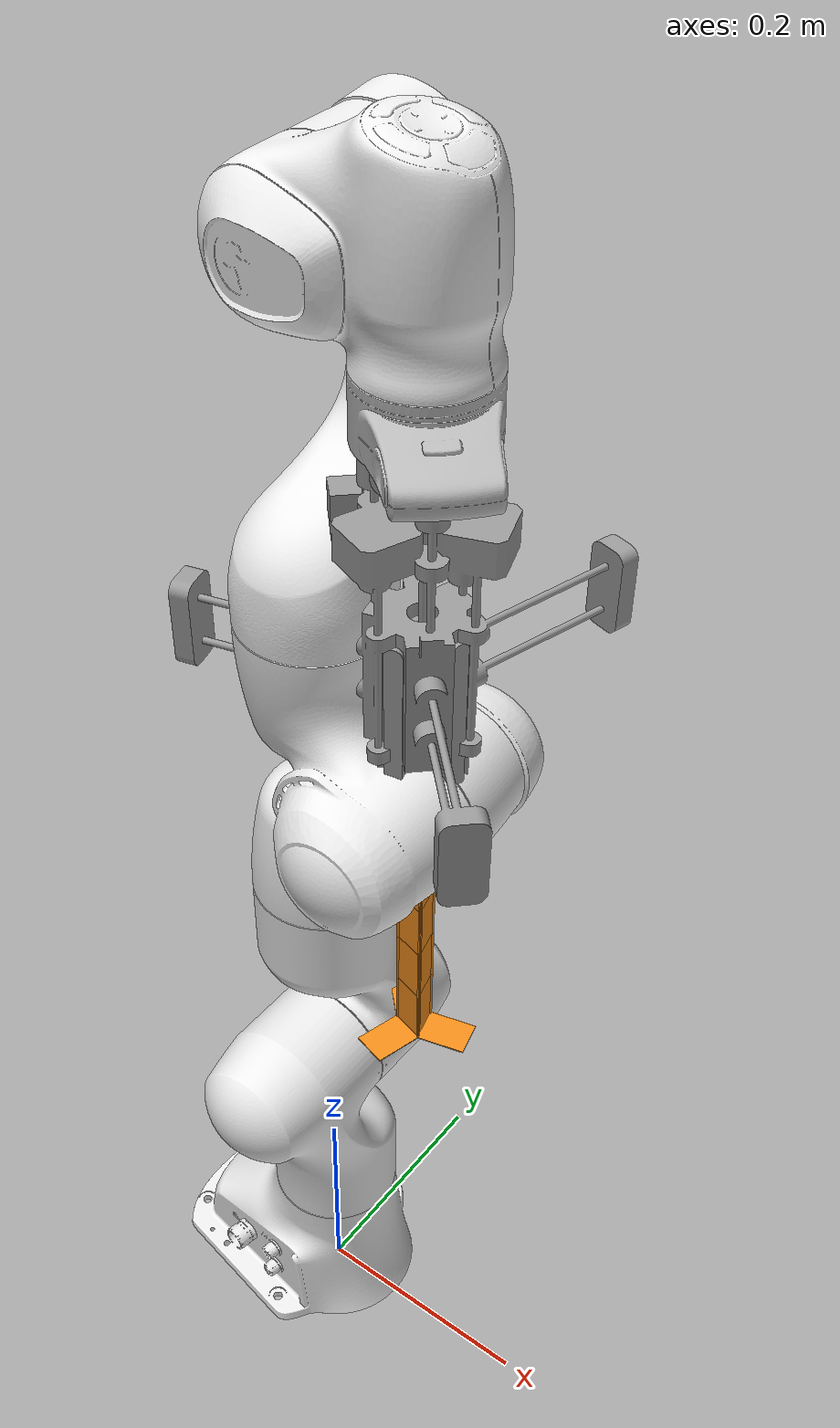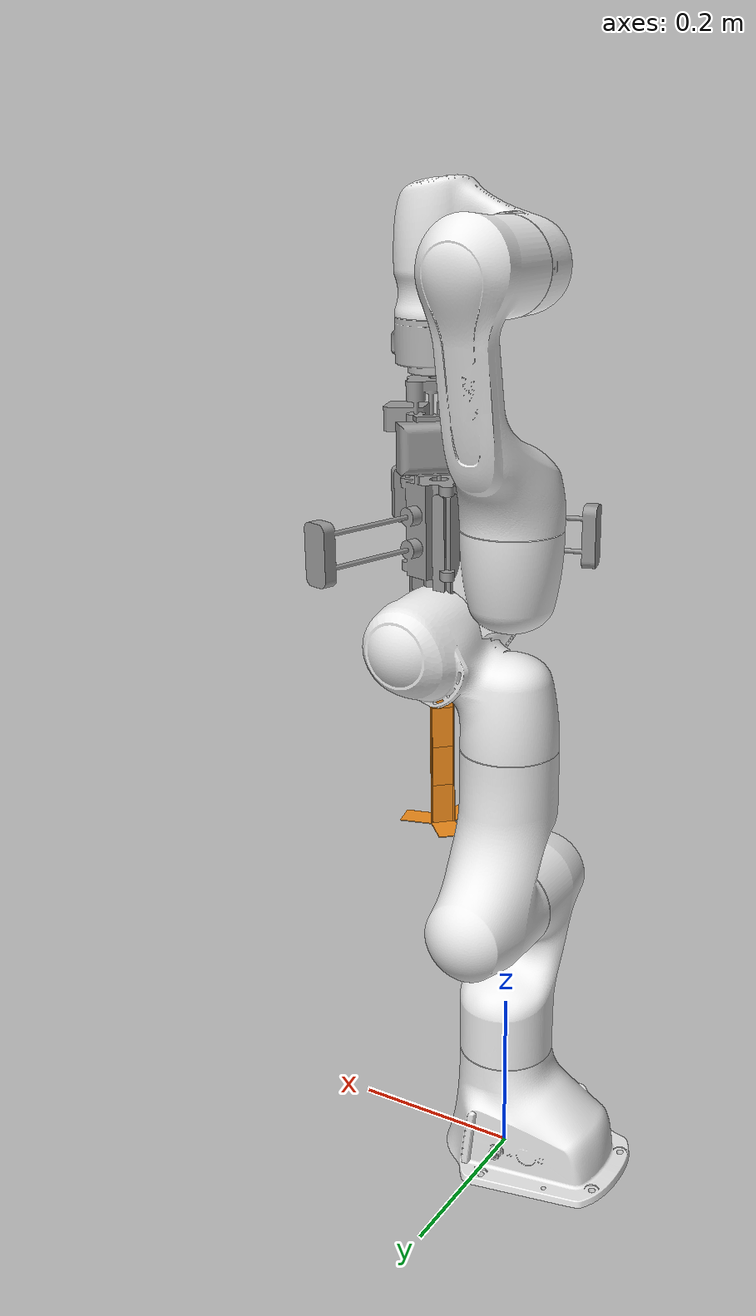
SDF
<sdf version="1.6">
 <model name="panda_and_gripper">
  <link name="panda_link0">
   <inertial>
    <mass>3.06</mass>
    <inertia><ixx>0.3</ixx><ixy>0</ixy><ixz>0</ixz><iyy>0.3</iyy><iyz>0</iyz><izz>0.3</izz></inertia>
   </inertial>
   <collision name="panda_link0_collision">
    <geometry>
     <mesh><scale>1 1 1</scale><uri>model://gripper_description/meshes_panda/panda collision link0.stl</uri></mesh>
    </geometry>
    <surface><friction><ode><mu>0.2</mu><mu2>0.2</mu2></ode></friction></surface>
   </collision>
   <visual name="panda_link0_visual">
    <geometry>
     <mesh><scale>1 1 1</scale><uri>model://gripper_description/meshes_panda/panda visual link0.stl</uri></mesh>
    </geometry>
    <material>
     <script><name>Gazebo/White</name><uri>file://media/materials/scripts/gazebo.material</uri></script>
    </material>
   </visual>
  </link>
  <joint name="world_to_base" type="fixed"><child>panda_link0</child><parent>world</parent></joint>
  <link name="panda_link1">
   <pose>0 0 0.333 0 -0 0</pose>
   <inertial>
    <mass>2.34</mass>
    <inertia>
     <ixx>0.70337</ixx>
     <ixy>-0.000139</ixy>
     <ixz>0.006772</ixz>
     <iyy>0.70661</iyy>
     <iyz>0.019169</iyz>
     <izz>0.009117</izz>
    </inertia>
   </inertial>
   <collision name="panda_link1_collision">
    <geometry>
     <mesh><scale>1 1 1</scale><uri>model://gripper_description/meshes_panda/panda collision link1.stl</uri></mesh>
    </geometry>
    <surface><friction><ode><mu>0.2</mu><mu2>0.2</mu2></ode></friction></surface>
   </collision>
   <visual name="panda_link1_visual">
    <geometry>
     <mesh><scale>1 1 1</scale><uri>model://gripper_description/meshes_panda/panda visual link1.stl</uri></mesh>
    </geometry>
    <material>
     <script><name>Gazebo/White</name><uri>file://media/materials/scripts/gazebo.material</uri></script>
    </material>
   </visual>
  </link>
  <joint name="panda_joint1" type="revolute">
   <child>panda_link1</child>
   <parent>panda_link0</parent>
   <axis>
    <xyz>0 0 1</xyz>
    <limit><lower>-2.8973</lower><upper>2.8973</upper><effort>87</effort><velocity>2.175</velocity></limit>
    <dynamics>
     <damping>1</damping>
     <friction>0.1</friction>
     <spring_reference>0</spring_reference>
     <spring_stiffness>0</spring_stiffness>
    </dynamics>
    <use_parent_model_frame>0</use_parent_model_frame>
   </axis>
  </joint>
  <link name="panda_link2">
   <pose>0 0 0.333 -1.5708 0 0</pose>
   <inertial>
    <mass>2.36</mass>
    <inertia>
     <ixx>0.007962</ixx>
     <ixy>-0.003925</ixy>
     <ixz>0.010254</ixz>
     <iyy>0.02811</iyy>
     <iyz>0.000704</iyz>
     <izz>0.025995</izz>
    </inertia>
   </inertial>
   <collision name="panda_link2_collision">
    <geometry>
     <mesh><scale>1 1 1</scale><uri>model://gripper_description/meshes_panda/panda collision link2.stl</uri></mesh>
    </geometry>
    <surface><friction><ode><mu>0.2</mu><mu2>0.2</mu2></ode></friction></surface>
   </collision>
   <visual name="panda_link2_visual">
    <geometry>
     <mesh><scale>1 1 1</scale><uri>model://gripper_description/meshes_panda/panda visual link2.stl</uri></mesh>
    </geometry>
    <material>
     <script><name>Gazebo/White</name><uri>file://media/materials/scripts/gazebo.material</uri></script>
    </material>
   </visual>
  </link>
  <joint name="panda_joint2" type="revolute">
   <child>panda_link2</child>
   <parent>panda_link1</parent>
   <axis>
    <xyz>0 0 1</xyz>
    <limit><lower>-1.7628</lower><upper>1.7628</upper><effort>87</effort><velocity>2.175</velocity></limit>
    <dynamics>
     <damping>1</damping>
     <friction>0.1</friction>
     <spring_reference>0</spring_reference>
     <spring_stiffness>0</spring_stiffness>
    </dynamics>
    <use_parent_model_frame>0</use_parent_model_frame>
   </axis>
  </joint>
  <link name="panda_link3">
   <pose>0 -0 0.649 0 -0 0</pose>
   <inertial>
    <mass>2.38</mass>
    <inertia>
     <ixx>0.037242</ixx>
     <ixy>-0.004761</ixy>
     <ixz>-0.011396</ixz>
     <iyy>0.036155</iyy>
     <iyz>-0.012805</iyz>
     <izz>0.01083</izz>
    </inertia>
   </inertial>
   <collision name="panda_link3_collision">
    <geometry>
     <mesh><scale>1 1 1</scale><uri>model://gripper_description/meshes_panda/panda collision link3.stl</uri></mesh>
    </geometry>
    <surface><friction><ode><mu>0.2</mu><mu2>0.2</mu2></ode></friction></surface>
   </collision>
   <visual name="panda_link3_visual">
    <geometry>
     <mesh><scale>1 1 1</scale><uri>model://gripper_description/meshes_panda/panda visual link3.stl</uri></mesh>
    </geometry>
    <material>
     <script><name>Gazebo/White</name><uri>file://media/materials/scripts/gazebo.material</uri></script>
    </material>
   </visual>
  </link>
  <joint name="panda_joint3" type="revolute">
   <child>panda_link3</child>
   <parent>panda_link2</parent>
   <axis>
    <xyz>0 0 1</xyz>
    <limit><lower>-2.8973</lower><upper>2.8973</upper><effort>87</effort><velocity>2.175</velocity></limit>
    <dynamics>
     <damping>1</damping>
     <friction>0.1</friction>
     <spring_reference>0</spring_reference>
     <spring_stiffness>0</spring_stiffness>
    </dynamics>
    <use_parent_model_frame>0</use_parent_model_frame>
   </axis>
  </joint>
  <link name="panda_link4">
   <pose>0.0825 -0 0.649 1.5708 -0 0</pose>
   <inertial>
    <mass>2.43</mass>
    <inertia>
     <ixx>0.025853</ixx>
     <ixy>0.007796</ixy>
     <ixz>-0.001332</ixz>
     <iyy>0.019552</iyy>
     <iyz>0.008641</iyz>
     <izz>0.028323</izz>
    </inertia>
   </inertial>
   <collision name="panda_link4_collision">
    <geometry>
     <mesh><scale>1 1 1</scale><uri>model://gripper_description/meshes_panda/panda collision link4.stl</uri></mesh>
    </geometry>
    <surface><friction><ode><mu>0.2</mu><mu2>0.2</mu2></ode></friction></surface>
   </collision>
   <visual name="panda_link4_visual">
    <geometry>
     <mesh><scale>1 1 1</scale><uri>model://gripper_description/meshes_panda/panda visual link4.stl</uri></mesh>
    </geometry>
    <material>
     <script><name>Gazebo/White</name><uri>file://media/materials/scripts/gazebo.material</uri></script>
    </material>
   </visual>
  </link>
  <joint name="panda_joint4" type="revolute">
   <child>panda_link4</child>
   <parent>panda_link3</parent>
   <axis>
    <xyz>0 0 1</xyz>
    <limit><lower>-3.0718</lower><upper>-0.0698</upper><effort>87</effort><velocity>2.175</velocity></limit>
    <dynamics>
     <damping>1</damping>
     <friction>0.1</friction>
     <spring_reference>0</spring_reference>
     <spring_stiffness>0</spring_stiffness>
    </dynamics>
    <use_parent_model_frame>0</use_parent_model_frame>
   </axis>
  </joint>
  <link name="panda_link5">
   <pose>0 0 1.033 0 -0 0</pose>
   <inertial>
    <mass>3.5</mass>
    <inertia>
     <ixx>0.035549</ixx>
     <ixy>-0.002117</ixy>
     <ixz>-0.004037</ixz>
     <iyy>0.029474</iyy>
     <iyz>0.000229</iyz>
     <izz>0.008627</izz>
    </inertia>
   </inertial>
   <collision name="panda_link5_collision">
    <geometry>
     <mesh><scale>1 1 1</scale><uri>model://gripper_description/meshes_panda/panda collision link5.stl</uri></mesh>
    </geometry>
    <surface><friction><ode><mu>0.2</mu><mu2>0.2</mu2></ode></friction></surface>
   </collision>
   <visual name="panda_link5_visual">
    <geometry>
     <mesh><scale>1 1 1</scale><uri>model://gripper_description/meshes_panda/panda visual link5.stl</uri></mesh>
    </geometry>
    <material>
     <script><name>Gazebo/White</name><uri>file://media/materials/scripts/gazebo.material</uri></script>
    </material>
   </visual>
  </link>
  <joint name="panda_joint5" type="revolute">
   <child>panda_link5</child>
   <parent>panda_link4</parent>
   <axis>
    <xyz>0 0 1</xyz>
    <limit><lower>-2.8973</lower><upper>2.8973</upper><effort>12</effort><velocity>2.61</velocity></limit>
    <dynamics>
     <damping>1</damping>
     <friction>0.1</friction>
     <spring_reference>0</spring_reference>
     <spring_stiffness>0</spring_stiffness>
    </dynamics>
    <use_parent_model_frame>0</use_parent_model_frame>
   </axis>
  </joint>
  <link name="panda_link6">
   <pose>0 0 1.033 1.5708 -0 0</pose>
   <inertial>
    <mass>1.47</mass>
    <inertia>
     <ixx>0.001964</ixx>
     <ixy>0.000109</ixy>
     <ixz>-0.001158</ixz>
     <iyy>0.004354</iyy>
     <iyz>0.000341</iyz>
     <izz>0.005433</izz>
    </inertia>
   </inertial>
   <collision name="panda_link6_collision">
    <geometry>
     <mesh><scale>1 1 1</scale><uri>model://gripper_description/meshes_panda/panda collision link6.stl</uri></mesh>
    </geometry>
    <surface><friction><ode><mu>0.2</mu><mu2>0.2</mu2></ode></friction></surface>
   </collision>
   <visual name="panda_link6_visual">
    <geometry>
     <mesh><scale>1 1 1</scale><uri>model://gripper_description/meshes_panda/panda visual link6.stl</uri></mesh>
    </geometry>
    <material>
     <script><name>Gazebo/White</name><uri>file://media/materials/scripts/gazebo.material</uri></script>
    </material>
   </visual>
  </link>
  <joint name="panda_joint6" type="revolute">
   <child>panda_link6</child>
   <parent>panda_link5</parent>
   <axis>
    <xyz>0 0 1</xyz>
    <limit><lower>-0.0175</lower><upper>3.7525</upper><effort>12</effort><velocity>2.61</velocity></limit>
    <dynamics>
     <damping>1</damping>
     <friction>0.1</friction>
     <spring_reference>0</spring_reference>
     <spring_stiffness>0</spring_stiffness>
    </dynamics>
    <use_parent_model_frame>0</use_parent_model_frame>
   </axis>
  </joint>
  <link name="panda_link7">
   <pose>0.088 0 1.033 3.14159 -0 0</pose>
   <inertial>
    <pose>0 0 0.211538 0 -0 0</pose>
    <mass>1.95</mass>
    <inertia>
     <ixx>0.0488062</ixx>
     <ixy>-0.000363</ixy>
     <ixz>-0.00110005</ixz>
     <iyy>0.0463226</iyy>
     <iyz>-0.000665297</iyz>
     <izz>0.010045</izz>
    </inertia>
   </inertial>
   <collision name="panda_link7_collision">
    <geometry>
     <mesh><scale>1 1 1</scale><uri>model://gripper_description/meshes_panda/panda collision link7.stl</uri></mesh>
    </geometry>
   </collision>
   <collision name="panda_link7_fixed_joint_lump__gripper_base_link_collision_1">
    <pose>0 0 0.25 0 0 -0.785398</pose>
    <geometry><cylinder><length>0.1</length><radius>0.03</radius></cylinder></geometry>
    <surface><friction><ode><mu>0.2</mu><mu2>0.2</mu2></ode></friction></surface>
   </collision>
   <visual name="panda_link7_visual">
    <geometry>
     <mesh><scale>1 1 1</scale><uri>model://gripper_description/meshes_panda/panda visual link7.stl</uri></mesh>
    </geometry>
   </visual>
   <visual name="panda_link7_fixed_joint_lump__gripper_base_link_visual_1">
    <pose>0 0 0.25 0 0 -0.785398</pose>
    <geometry>
     <mesh><scale>1 1 1</scale><uri>model://gripper_description/meshes/main body visual.STL</uri></mesh>
    </geometry>
    <material>
     <script><name>Gazebo/Grey</name><uri>file://media/materials/scripts/gazebo.material</uri></script>
    </material>
   </visual>
  </link>
  <joint name="panda_joint7" type="revolute">
   <child>panda_link7</child>
   <parent>panda_link6</parent>
   <axis>
    <xyz>0 0 1</xyz>
    <limit><lower>-2.8973</lower><upper>2.8973</upper><effort>12</effort><velocity>2.61</velocity></limit>
    <dynamics>
     <damping>1</damping>
     <friction>0.1</friction>
     <spring_reference>0</spring_reference>
     <spring_stiffness>0</spring_stiffness>
    </dynamics>
    <use_parent_model_frame>0</use_parent_model_frame>
   </axis>
  </joint>
  <link name="finger_1_intermediate">
   <pose>0.088 -0 0.783 -0.785403 1.57079 3.14159</pose>
   <inertial>
    <mass>0.1</mass>
    <inertia>
     <ixx>5.559e-05</ixx>
     <ixy>-4.723e-05</ixy>
     <ixz>1.16e-06</ixz>
     <iyy>0.00014636</iyy>
     <iyz>1e-06</iyz>
     <izz>0.00015418</izz>
    </inertia>
   </inertial>
   <collision name="finger_1_intermediate_collision">
    <geometry>
     <mesh><scale>1 1 1</scale><uri>model://gripper_description/meshes/nut collision.STL</uri></mesh>
    </geometry>
    <surface><friction><ode><mu>0.2</mu><mu2>0.2</mu2></ode></friction></surface>
   </collision>
   <visual name="finger_1_intermediate_visual">
    <geometry>
     <mesh><scale>1 1 1</scale><uri>model://gripper_description/meshes/nut visual.STL</uri></mesh>
    </geometry>
    <material>
     <script><name>Gazebo/Grey</name><uri>file://media/materials/scripts/gazebo.material</uri></script>
    </material>
   </visual>
  </link>
  <joint name="finger_1_prismatic_joint" type="prismatic">
   <child>finger_1_intermediate</child>
   <parent>panda_link7</parent>
   <axis>
    <xyz>0 1 0</xyz>
    <limit><lower>0.049</lower><upper>0.134</upper><effort>40</effort><velocity>0.015</velocity></limit>
    <dynamics>
     <damping>1</damping>
     <friction>0</friction>
     <spring_reference>0</spring_reference>
     <spring_stiffness>0</spring_stiffness>
    </dynamics>
    <use_parent_model_frame>0</use_parent_model_frame>
   </axis>
  </joint>
  <link name="finger_1">
   <pose>0.088 -0 0.783 -0.785403 1.57079 3.14159</pose>
   <inertial>
    <mass>0.1</mass>
    <inertia>
     <ixx>5.559e-05</ixx>
     <ixy>-4.723e-05</ixy>
     <ixz>1.16e-06</ixz>
     <iyy>0.00014636</iyy>
     <iyz>1e-06</iyz>
     <izz>0.00015418</izz>
    </inertia>
   </inertial>
   <collision name="finger_1_collision">
    <geometry>
     <mesh><scale>1 1 1</scale><uri>model://gripper_description/meshes/platform only collision.STL</uri></mesh>
    </geometry>
    <surface><friction><ode><mu>0.2</mu><mu2>0.2</mu2></ode></friction></surface>
   </collision>
   <visual name="finger_1_visual">
    <geometry>
     <mesh><scale>1 1 1</scale><uri>model://gripper_description/meshes/platform only visual.STL</uri></mesh>
    </geometry>
    <material>
     <script><name>Gazebo/Grey</name><uri>file://media/materials/scripts/gazebo.material</uri></script>
    </material>
   </visual>
  </link>
  <joint name="finger_1_revolute_joint" type="revolute">
   <child>finger_1</child>
   <parent>finger_1_intermediate</parent>
   <axis>
    <xyz>0 0 1</xyz>
    <limit><lower>-0.7</lower><upper>0.7</upper><effort>40</effort><velocity>0.1</velocity></limit>
    <dynamics>
     <damping>1</damping>
     <friction>0</friction>
     <spring_reference>0</spring_reference>
     <spring_stiffness>0</spring_stiffness>
    </dynamics>
    <use_parent_model_frame>0</use_parent_model_frame>
   </axis>
  </joint>
  <link name="finger_1_segment_link_1">
   <pose>0.08305 0.00495 0.654 0.785403 1.57079 3.14159</pose>
   <inertial>
    <mass>0.0128885</mass>
    <inertia>
     <ixx>8.42918e-07</ixx>
     <ixy>0</ixy>
     <ixz>0</ixz>
     <iyy>9.49109e-06</iyy>
     <iyz>0</iyz>
     <izz>1.03323e-05</izz>
    </inertia>
   </inertial>
   <collision name="finger_1_segment_link_1_collision">
    <pose>0.0235 0 0 0 -0 0</pose>
    <geometry><box><size>0.047 0.028 0.0009</size></box></geometry>
    <surface>
     <contact><ode><max_vel>0</max_vel><min_depth>0.001</min_depth></ode></contact>
     <friction><ode><mu>0.1</mu><mu2>0.1</mu2></ode></friction>
    </surface>
   </collision>
   <visual name="finger_1_segment_link_1_visual">
    <pose>0.0235 0 0 0 -0 0</pose>
    <geometry><box><size>0.047 0.028 0.0009</size></box></geometry>
    <material>
     <script><name>Gazebo/Orange</name><uri>file://media/materials/scripts/gazebo.material</uri></script>
    </material>
   </visual>
  </link>
  <joint name="finger_1_segment_joint_0" type="revolute">
   <child>finger_1_segment_link_1</child>
   <parent>finger_1</parent>
   <axis>
    <xyz>0 1 0</xyz>
    <limit><lower>-1</lower><upper>1</upper><effort>1000</effort><velocity>1</velocity></limit>
    <dynamics>
     <damping>0.01</damping>
     <friction>0</friction>
     <spring_reference>0</spring_reference>
     <spring_stiffness>0</spring_stiffness>
    </dynamics>
    <use_parent_model_frame>0</use_parent_model_frame>
   </axis>
  </joint>
  <link name="finger_1_segment_link_2">
   <pose>0.08305 0.00495 0.607 0.785403 1.57079 3.14159</pose>
   <inertial>
    <mass>0.0128885</mass>
    <inertia>
     <ixx>8.42918e-07</ixx>
     <ixy>0</ixy>
     <ixz>0</ixz>
     <iyy>9.49109e-06</iyy>
     <iyz>0</iyz>
     <izz>1.03323e-05</izz>
    </inertia>
   </inertial>
   <collision name="finger_1_segment_link_2_collision">
    <pose>0.0235 0 0 0 -0 0</pose>
    <geometry><box><size>0.047 0.028 0.0009</size></box></geometry>
    <surface>
     <contact><ode><max_vel>0</max_vel><min_depth>0.001</min_depth></ode></contact>
     <friction><ode><mu>0.1</mu><mu2>0.1</mu2></ode></friction>
    </surface>
   </collision>
   <visual name="finger_1_segment_link_2_visual">
    <pose>0.0235 0 0 0 -0 0</pose>
    <geometry><box><size>0.047 0.028 0.0009</size></box></geometry>
    <material>
     <script><name>Gazebo/Orange</name><uri>file://media/materials/scripts/gazebo.material</uri></script>
    </material>
   </visual>
  </link>
  <joint name="finger_1_segment_joint_1" type="revolute">
   <child>finger_1_segment_link_2</child>
   <parent>finger_1_segment_link_1</parent>
   <axis>
    <xyz>0 1 0</xyz>
    <limit><lower>-1</lower><upper>1</upper><effort>1000</effort><velocity>1</velocity></limit>
    <dynamics>
     <damping>0.01</damping>
     <friction>0</friction>
     <spring_reference>0</spring_reference>
     <spring_stiffness>3</spring_stiffness>
    </dynamics>
    <use_parent_model_frame>0</use_parent_model_frame>
   </axis>
   <physics>
    <provide_feedback>1</provide_feedback>
    <ode>
     <provide_feedback>1</provide_feedback>
     <implicit_spring_damper>1</implicit_spring_damper>
     <cfm_damping>1</cfm_damping>
     <limit><cfm>0</cfm><erp>0.2</erp></limit>
    </ode>
   </physics>
  </joint>
  <link name="finger_1_segment_link_3">
   <pose>0.08305 0.00495 0.56 0.785403 1.57079 3.14159</pose>
   <inertial>
    <mass>0.0128885</mass>
    <inertia>
     <ixx>8.42918e-07</ixx>
     <ixy>0</ixy>
     <ixz>0</ixz>
     <iyy>9.49109e-06</iyy>
     <iyz>0</iyz>
     <izz>1.03323e-05</izz>
    </inertia>
   </inertial>
   <collision name="finger_1_segment_link_3_collision">
    <pose>0.0235 0 0 0 -0 0</pose>
    <geometry><box><size>0.047 0.028 0.0009</size></box></geometry>
    <surface>
     <contact><ode><max_vel>0</max_vel><min_depth>0.001</min_depth></ode></contact>
     <friction><ode><mu>0.1</mu><mu2>0.1</mu2></ode></friction>
    </surface>
   </collision>
   <visual name="finger_1_segment_link_3_visual">
    <pose>0.0235 0 0 0 -0 0</pose>
    <geometry><box><size>0.047 0.028 0.0009</size></box></geometry>
    <material>
     <script><name>Gazebo/Orange</name><uri>file://media/materials/scripts/gazebo.material</uri></script>
    </material>
   </visual>
  </link>
  <joint name="finger_1_segment_joint_2" type="revolute">
   <child>finger_1_segment_link_3</child>
   <parent>finger_1_segment_link_2</parent>
   <axis>
    <xyz>0 1 0</xyz>
    <limit><lower>-1</lower><upper>1</upper><effort>1000</effort><velocity>1</velocity></limit>
    <dynamics>
     <damping>0.01</damping>
     <friction>0</friction>
     <spring_reference>0</spring_reference>
     <spring_stiffness>3</spring_stiffness>
    </dynamics>
    <use_parent_model_frame>0</use_parent_model_frame>
   </axis>
   <physics>
    <provide_feedback>1</provide_feedback>
    <ode>
     <provide_feedback>1</provide_feedback>
     <implicit_spring_damper>1</implicit_spring_damper>
     <cfm_damping>1</cfm_damping>
     <limit><cfm>0</cfm><erp>0.2</erp></limit>
    </ode>
   </physics>
  </joint>
  <link name="finger_1_segment_link_4">
   <pose>0.08305 0.00495 0.513 0.785403 1.57079 3.14159</pose>
   <inertial>
    <mass>0.0128885</mass>
    <inertia>
     <ixx>8.42918e-07</ixx>
     <ixy>0</ixy>
     <ixz>0</ixz>
     <iyy>9.49109e-06</iyy>
     <iyz>0</iyz>
     <izz>1.03323e-05</izz>
    </inertia>
   </inertial>
   <collision name="finger_1_segment_link_4_collision">
    <pose>0.0235 0 0 0 -0 0</pose>
    <geometry><box><size>0.047 0.028 0.0009</size></box></geometry>
    <surface>
     <contact><ode><max_vel>0</max_vel><min_depth>0.001</min_depth></ode></contact>
     <friction><ode><mu>0.1</mu><mu2>0.1</mu2></ode></friction>
    </surface>
   </collision>
   <visual name="finger_1_segment_link_4_visual">
    <pose>0.0235 0 0 0 -0 0</pose>
    <geometry><box><size>0.047 0.028 0.0009</size></box></geometry>
    <material>
     <script><name>Gazebo/Orange</name><uri>file://media/materials/scripts/gazebo.material</uri></script>
    </material>
   </visual>
  </link>
  <joint name="finger_1_segment_joint_3" type="revolute">
   <child>finger_1_segment_link_4</child>
   <parent>finger_1_segment_link_3</parent>
   <axis>
    <xyz>0 1 0</xyz>
    <limit><lower>-1</lower><upper>1</upper><effort>1000</effort><velocity>1</velocity></limit>
    <dynamics>
     <damping>0.01</damping>
     <friction>0</friction>
     <spring_reference>0</spring_reference>
     <spring_stiffness>3</spring_stiffness>
    </dynamics>
    <use_parent_model_frame>0</use_parent_model_frame>
   </axis>
   <physics>
    <provide_feedback>1</provide_feedback>
    <ode>
     <provide_feedback>1</provide_feedback>
     <implicit_spring_damper>1</implicit_spring_damper>
     <cfm_damping>1</cfm_damping>
     <limit><cfm>0</cfm><erp>0.2</erp></limit>
    </ode>
   </physics>
  </joint>
  <link name="finger_1_segment_link_5">
   <pose>0.08305 0.00495 0.466 0.785403 1.57079 3.14159</pose>
   <inertial>
    <pose>0.0235 0 0 0 -0 0</pose>
    <mass>0.025777</mass>
    <inertia>
     <ixx>1.11752e-05</ixx>
     <ixy>0</ixy>
     <ixz>-5.81055e-22</ixz>
     <iyy>3.32175e-05</iyy>
     <iyz>0</iyz>
     <izz>2.54105e-05</izz>
    </inertia>
   </inertial>
   <collision name="finger_1_segment_link_5_collision">
    <pose>0.0235 0 0 0 -0 0</pose>
    <geometry><box><size>0.047 0.028 0.0009</size></box></geometry>
    <surface>
     <contact><ode><max_vel>0</max_vel><min_depth>0.001</min_depth></ode></contact>
     <friction><ode><mu>0.1</mu><mu2>0.1</mu2></ode></friction>
    </surface>
   </collision>
   <collision name="finger_1_segment_link_5_fixed_joint_lump__finger_1_finger_hook_link_collision_1">
    <pose>0.047 0 0.01925 3.14159 -1.57079 3.14159</pose>
    <geometry><box><size>0.0385 0.028 0.0009</size></box></geometry>
    <surface>
     <contact><ode><max_vel>0</max_vel><min_depth>0.001</min_depth></ode></contact>
     <friction><ode><mu>0.1</mu><mu2>0.1</mu2></ode></friction>
    </surface>
   </collision>
   <visual name="finger_1_segment_link_5_visual">
    <pose>0.0235 0 0 0 -0 0</pose>
    <geometry><box><size>0.047 0.028 0.0009</size></box></geometry>
    <material>
     <script><name>Gazebo/Orange</name><uri>file://media/materials/scripts/gazebo.material</uri></script>
    </material>
   </visual>
   <visual name="finger_1_segment_link_5_fixed_joint_lump__finger_1_finger_hook_link_visual_1">
    <pose>0.047 0 0.01925 3.14159 -1.57079 3.14159</pose>
    <geometry><box><size>0.0385 0.028 0.0009</size></box></geometry>
    <material>
     <script><name>Gazebo/Orange</name><uri>file://media/materials/scripts/gazebo.material</uri></script>
    </material>
   </visual>
  </link>
  <joint name="finger_1_segment_joint_4" type="revolute">
   <child>finger_1_segment_link_5</child>
   <parent>finger_1_segment_link_4</parent>
   <axis>
    <xyz>0 1 0</xyz>
    <limit><lower>-1</lower><upper>1</upper><effort>1000</effort><velocity>1</velocity></limit>
    <dynamics>
     <damping>0.01</damping>
     <friction>0</friction>
     <spring_reference>0</spring_reference>
     <spring_stiffness>3</spring_stiffness>
    </dynamics>
    <use_parent_model_frame>0</use_parent_model_frame>
   </axis>
   <physics>
    <provide_feedback>1</provide_feedback>
    <ode>
     <provide_feedback>1</provide_feedback>
     <implicit_spring_damper>1</implicit_spring_damper>
     <cfm_damping>1</cfm_damping>
     <limit><cfm>0</cfm><erp>0.2</erp></limit>
    </ode>
   </physics>
  </joint>
  <link name="finger_2_intermediate">
   <pose>0.088 -0 0.783 -2.87979 1.57079 3.14159</pose>
   <inertial>
    <mass>0.1</mass>
    <inertia>
     <ixx>5.559e-05</ixx>
     <ixy>-4.723e-05</ixy>
     <ixz>1.16e-06</ixz>
     <iyy>0.00014636</iyy>
     <iyz>1e-06</iyz>
     <izz>0.00015418</izz>
    </inertia>
   </inertial>
   <collision name="finger_2_intermediate_collision">
    <geometry>
     <mesh><scale>1 1 1</scale><uri>model://gripper_description/meshes/nut collision.STL</uri></mesh>
    </geometry>
    <surface><friction><ode><mu>0.2</mu><mu2>0.2</mu2></ode></friction></surface>
   </collision>
   <visual name="finger_2_intermediate_visual">
    <geometry>
     <mesh><scale>1 1 1</scale><uri>model://gripper_description/meshes/nut visual.STL</uri></mesh>
    </geometry>
    <material>
     <script><name>Gazebo/Grey</name><uri>file://media/materials/scripts/gazebo.material</uri></script>
    </material>
   </visual>
  </link>
  <joint name="finger_2_prismatic_joint" type="prismatic">
   <child>finger_2_intermediate</child>
   <parent>panda_link7</parent>
   <axis>
    <xyz>0 1 0</xyz>
    <limit><lower>0.049</lower><upper>0.134</upper><effort>40</effort><velocity>0.015</velocity></limit>
    <dynamics>
     <damping>1</damping>
     <friction>0</friction>
     <spring_reference>0</spring_reference>
     <spring_stiffness>0</spring_stiffness>
    </dynamics>
    <use_parent_model_frame>0</use_parent_model_frame>
   </axis>
  </joint>
  <link name="finger_2">
   <pose>0.088 -0 0.783 -2.87979 1.57079 3.14159</pose>
   <inertial>
    <mass>0.1</mass>
    <inertia>
     <ixx>5.559e-05</ixx>
     <ixy>-4.723e-05</ixy>
     <ixz>1.16e-06</ixz>
     <iyy>0.00014636</iyy>
     <iyz>1e-06</iyz>
     <izz>0.00015418</izz>
    </inertia>
   </inertial>
   <collision name="finger_2_collision">
    <geometry>
     <mesh><scale>1 1 1</scale><uri>model://gripper_description/meshes/platform only collision.STL</uri></mesh>
    </geometry>
    <surface><friction><ode><mu>0.2</mu><mu2>0.2</mu2></ode></friction></surface>
   </collision>
   <visual name="finger_2_visual">
    <geometry>
     <mesh><scale>1 1 1</scale><uri>model://gripper_description/meshes/platform only visual.STL</uri></mesh>
    </geometry>
    <material>
     <script><name>Gazebo/Grey</name><uri>file://media/materials/scripts/gazebo.material</uri></script>
    </material>
   </visual>
  </link>
  <joint name="finger_2_revolute_joint" type="revolute">
   <child>finger_2</child>
   <parent>finger_2_intermediate</parent>
   <axis>
    <xyz>0 0 1</xyz>
    <limit><lower>-0.7</lower><upper>0.7</upper><effort>40</effort><velocity>0.1</velocity></limit>
    <dynamics>
     <damping>1</damping>
     <friction>0</friction>
     <spring_reference>0</spring_reference>
     <spring_stiffness>0</spring_stiffness>
    </dynamics>
    <use_parent_model_frame>0</use_parent_model_frame>
   </axis>
  </joint>
  <link name="finger_2_segment_link_1">
   <pose>0.086188 -0.006761 0.654 -1.30899 1.57079 -3.14159</pose>
   <inertial>
    <mass>0.0128885</mass>
    <inertia>
     <ixx>8.42918e-07</ixx>
     <ixy>0</ixy>
     <ixz>0</ixz>
     <iyy>9.49109e-06</iyy>
     <iyz>0</iyz>
     <izz>1.03323e-05</izz>
    </inertia>
   </inertial>
   <collision name="finger_2_segment_link_1_collision">
    <pose>0.0235 0 0 0 -0 0</pose>
    <geometry><box><size>0.047 0.028 0.0009</size></box></geometry>
    <surface>
     <contact><ode><max_vel>0</max_vel><min_depth>0.001</min_depth></ode></contact>
     <friction><ode><mu>0.1</mu><mu2>0.1</mu2></ode></friction>
    </surface>
   </collision>
   <visual name="finger_2_segment_link_1_visual">
    <pose>0.0235 0 0 0 -0 0</pose>
    <geometry><box><size>0.047 0.028 0.0009</size></box></geometry>
    <material>
     <script><name>Gazebo/Orange</name><uri>file://media/materials/scripts/gazebo.material</uri></script>
    </material>
   </visual>
  </link>
  <joint name="finger_2_segment_joint_0" type="revolute">
   <child>finger_2_segment_link_1</child>
   <parent>finger_2</parent>
   <axis>
    <xyz>0 1 0</xyz>
    <limit><lower>-1</lower><upper>1</upper><effort>1000</effort><velocity>1</velocity></limit>
    <dynamics>
     <damping>0.01</damping>
     <friction>0</friction>
     <spring_reference>0</spring_reference>
     <spring_stiffness>0</spring_stiffness>
    </dynamics>
    <use_parent_model_frame>0</use_parent_model_frame>
   </axis>
  </joint>
  <link name="finger_2_segment_link_2">
   <pose>0.086188 -0.006761 0.607 -1.30899 1.57079 -3.14159</pose>
   <inertial>
    <mass>0.0128885</mass>
    <inertia>
     <ixx>8.42918e-07</ixx>
     <ixy>0</ixy>
     <ixz>0</ixz>
     <iyy>9.49109e-06</iyy>
     <iyz>0</iyz>
     <izz>1.03323e-05</izz>
    </inertia>
   </inertial>
   <collision name="finger_2_segment_link_2_collision">
    <pose>0.0235 0 0 0 -0 0</pose>
    <geometry><box><size>0.047 0.028 0.0009</size></box></geometry>
    <surface>
     <contact><ode><max_vel>0</max_vel><min_depth>0.001</min_depth></ode></contact>
     <friction><ode><mu>0.1</mu><mu2>0.1</mu2></ode></friction>
    </surface>
   </collision>
   <visual name="finger_2_segment_link_2_visual">
    <pose>0.0235 0 0 0 -0 0</pose>
    <geometry><box><size>0.047 0.028 0.0009</size></box></geometry>
    <material>
     <script><name>Gazebo/Orange</name><uri>file://media/materials/scripts/gazebo.material</uri></script>
    </material>
   </visual>
  </link>
  <joint name="finger_2_segment_joint_1" type="revolute">
   <child>finger_2_segment_link_2</child>
   <parent>finger_2_segment_link_1</parent>
   <axis>
    <xyz>0 1 0</xyz>
    <limit><lower>-1</lower><upper>1</upper><effort>1000</effort><velocity>1</velocity></limit>
    <dynamics>
     <damping>0.01</damping>
     <friction>0</friction>
     <spring_reference>0</spring_reference>
     <spring_stiffness>3</spring_stiffness>
    </dynamics>
    <use_parent_model_frame>0</use_parent_model_frame>
   </axis>
   <physics>
    <provide_feedback>1</provide_feedback>
    <ode>
     <provide_feedback>1</provide_feedback>
     <implicit_spring_damper>1</implicit_spring_damper>
     <cfm_damping>1</cfm_damping>
     <limit><cfm>0</cfm><erp>0.2</erp></limit>
    </ode>
   </physics>
  </joint>
  <link name="finger_2_segment_link_3">
   <pose>0.086188 -0.006761 0.56 -1.30899 1.57079 -3.14159</pose>
   <inertial>
    <mass>0.0128885</mass>
    <inertia>
     <ixx>8.42918e-07</ixx>
     <ixy>0</ixy>
     <ixz>0</ixz>
     <iyy>9.49109e-06</iyy>
     <iyz>0</iyz>
     <izz>1.03323e-05</izz>
    </inertia>
   </inertial>
   <collision name="finger_2_segment_link_3_collision">
    <pose>0.0235 0 0 0 -0 0</pose>
    <geometry><box><size>0.047 0.028 0.0009</size></box></geometry>
    <surface>
     <contact><ode><max_vel>0</max_vel><min_depth>0.001</min_depth></ode></contact>
     <friction><ode><mu>0.1</mu><mu2>0.1</mu2></ode></friction>
    </surface>
   </collision>
   <visual name="finger_2_segment_link_3_visual">
    <pose>0.0235 0 0 0 -0 0</pose>
    <geometry><box><size>0.047 0.028 0.0009</size></box></geometry>
    <material>
     <script><name>Gazebo/Orange</name><uri>file://media/materials/scripts/gazebo.material</uri></script>
    </material>
   </visual>
  </link>
  <joint name="finger_2_segment_joint_2" type="revolute">
   <child>finger_2_segment_link_3</child>
   <parent>finger_2_segment_link_2</parent>
   <axis>
    <xyz>0 1 0</xyz>
    <limit><lower>-1</lower><upper>1</upper><effort>1000</effort><velocity>1</velocity></limit>
    <dynamics>
     <damping>0.01</damping>
     <friction>0</friction>
     <spring_reference>0</spring_reference>
     <spring_stiffness>3</spring_stiffness>
    </dynamics>
    <use_parent_model_frame>0</use_parent_model_frame>
   </axis>
   <physics>
    <provide_feedback>1</provide_feedback>
    <ode>
     <provide_feedback>1</provide_feedback>
     <implicit_spring_damper>1</implicit_spring_damper>
     <cfm_damping>1</cfm_damping>
     <limit><cfm>0</cfm><erp>0.2</erp></limit>
    </ode>
   </physics>
  </joint>
  <link name="finger_2_segment_link_4">
   <pose>0.086188 -0.006761 0.513 -1.30899 1.57079 -3.14159</pose>
   <inertial>
    <mass>0.0128885</mass>
    <inertia>
     <ixx>8.42918e-07</ixx>
     <ixy>0</ixy>
     <ixz>0</ixz>
     <iyy>9.49109e-06</iyy>
     <iyz>0</iyz>
     <izz>1.03323e-05</izz>
    </inertia>
   </inertial>
   <collision name="finger_2_segment_link_4_collision">
    <pose>0.0235 0 0 0 -0 0</pose>
    <geometry><box><size>0.047 0.028 0.0009</size></box></geometry>
    <surface>
     <contact><ode><max_vel>0</max_vel><min_depth>0.001</min_depth></ode></contact>
     <friction><ode><mu>0.1</mu><mu2>0.1</mu2></ode></friction>
    </surface>
   </collision>
   <visual name="finger_2_segment_link_4_visual">
    <pose>0.0235 0 0 0 -0 0</pose>
    <geometry><box><size>0.047 0.028 0.0009</size></box></geometry>
    <material>
     <script><name>Gazebo/Orange</name><uri>file://media/materials/scripts/gazebo.material</uri></script>
    </material>
   </visual>
  </link>
  <joint name="finger_2_segment_joint_3" type="revolute">
   <child>finger_2_segment_link_4</child>
   <parent>finger_2_segment_link_3</parent>
   <axis>
    <xyz>0 1 0</xyz>
    <limit><lower>-1</lower><upper>1</upper><effort>1000</effort><velocity>1</velocity></limit>
    <dynamics>
     <damping>0.01</damping>
     <friction>0</friction>
     <spring_reference>0</spring_reference>
     <spring_stiffness>3</spring_stiffness>
    </dynamics>
    <use_parent_model_frame>0</use_parent_model_frame>
   </axis>
   <physics>
    <provide_feedback>1</provide_feedback>
    <ode>
     <provide_feedback>1</provide_feedback>
     <implicit_spring_damper>1</implicit_spring_damper>
     <cfm_damping>1</cfm_damping>
     <limit><cfm>0</cfm><erp>0.2</erp></limit>
    </ode>
   </physics>
  </joint>
  <link name="finger_2_segment_link_5">
   <pose>0.086188 -0.006761 0.466 -1.30899 1.57079 -3.14159</pose>
   <inertial>
    <pose>0.0235 0 0 0 -0 0</pose>
    <mass>0.025777</mass>
    <inertia>
     <ixx>1.11752e-05</ixx>
     <ixy>0</ixy>
     <ixz>-5.81055e-22</ixz>
     <iyy>3.32175e-05</iyy>
     <iyz>0</iyz>
     <izz>2.54105e-05</izz>
    </inertia>
   </inertial>
   <collision name="finger_2_segment_link_5_collision">
    <pose>0.0235 0 0 0 -0 0</pose>
    <geometry><box><size>0.047 0.028 0.0009</size></box></geometry>
    <surface>
     <contact><ode><max_vel>0</max_vel><min_depth>0.001</min_depth></ode></contact>
     <friction><ode><mu>0.1</mu><mu2>0.1</mu2></ode></friction>
    </surface>
   </collision>
   <collision name="finger_2_segment_link_5_fixed_joint_lump__finger_2_finger_hook_link_collision_1">
    <pose>0.047 0 0.01925 3.14159 -1.57079 3.14159</pose>
    <geometry><box><size>0.0385 0.028 0.0009</size></box></geometry>
    <surface>
     <contact><ode><max_vel>0</max_vel><min_depth>0.001</min_depth></ode></contact>
     <friction><ode><mu>0.1</mu><mu2>0.1</mu2></ode></friction>
    </surface>
   </collision>
   <visual name="finger_2_segment_link_5_visual">
    <pose>0.0235 0 0 0 -0 0</pose>
    <geometry><box><size>0.047 0.028 0.0009</size></box></geometry>
    <material>
     <script><name>Gazebo/Orange</name><uri>file://media/materials/scripts/gazebo.material</uri></script>
    </material>
   </visual>
   <visual name="finger_2_segment_link_5_fixed_joint_lump__finger_2_finger_hook_link_visual_1">
    <pose>0.047 0 0.01925 3.14159 -1.57079 3.14159</pose>
    <geometry><box><size>0.0385 0.028 0.0009</size></box></geometry>
    <material>
     <script><name>Gazebo/Orange</name><uri>file://media/materials/scripts/gazebo.material</uri></script>
    </material>
   </visual>
  </link>
  <joint name="finger_2_segment_joint_4" type="revolute">
   <child>finger_2_segment_link_5</child>
   <parent>finger_2_segment_link_4</parent>
   <axis>
    <xyz>0 1 0</xyz>
    <limit><lower>-1</lower><upper>1</upper><effort>1000</effort><velocity>1</velocity></limit>
    <dynamics>
     <damping>0.01</damping>
     <friction>0</friction>
     <spring_reference>0</spring_reference>
     <spring_stiffness>3</spring_stiffness>
    </dynamics>
    <use_parent_model_frame>0</use_parent_model_frame>
   </axis>
   <physics>
    <provide_feedback>1</provide_feedback>
    <ode>
     <provide_feedback>1</provide_feedback>
     <implicit_spring_damper>1</implicit_spring_damper>
     <cfm_damping>1</cfm_damping>
     <limit><cfm>0</cfm><erp>0.2</erp></limit>
    </ode>
   </physics>
  </joint>
  <link name="finger_3_intermediate">
   <pose>0.088 -0 0.783 1.30899 1.57079 3.14159</pose>
   <inertial>
    <mass>0.1</mass>
    <inertia>
     <ixx>5.559e-05</ixx>
     <ixy>-4.723e-05</ixy>
     <ixz>1.16e-06</ixz>
     <iyy>0.00014636</iyy>
     <iyz>1e-06</iyz>
     <izz>0.00015418</izz>
    </inertia>
   </inertial>
   <collision name="finger_3_intermediate_collision">
    <geometry>
     <mesh><scale>1 1 1</scale><uri>model://gripper_description/meshes/nut collision.STL</uri></mesh>
    </geometry>
    <surface><friction><ode><mu>0.2</mu><mu2>0.2</mu2></ode></friction></surface>
   </collision>
   <visual name="finger_3_intermediate_visual">
    <geometry>
     <mesh><scale>1 1 1</scale><uri>model://gripper_description/meshes/nut visual.STL</uri></mesh>
    </geometry>
    <material>
     <script><name>Gazebo/Grey</name><uri>file://media/materials/scripts/gazebo.material</uri></script>
    </material>
   </visual>
  </link>
  <joint name="finger_3_prismatic_joint" type="prismatic">
   <child>finger_3_intermediate</child>
   <parent>panda_link7</parent>
   <axis>
    <xyz>0 1 0</xyz>
    <limit><lower>0.049</lower><upper>0.134</upper><effort>40</effort><velocity>0.015</velocity></limit>
    <dynamics>
     <damping>1</damping>
     <friction>0</friction>
     <spring_reference>0</spring_reference>
     <spring_stiffness>0</spring_stiffness>
    </dynamics>
    <use_parent_model_frame>0</use_parent_model_frame>
   </axis>
  </joint>
  <link name="finger_3">
   <pose>0.088 -0 0.783 1.30899 1.57079 3.14159</pose>
   <inertial>
    <mass>0.1</mass>
    <inertia>
     <ixx>5.559e-05</ixx>
     <ixy>-4.723e-05</ixy>
     <ixz>1.16e-06</ixz>
     <iyy>0.00014636</iyy>
     <iyz>1e-06</iyz>
     <izz>0.00015418</izz>
    </inertia>
   </inertial>
   <collision name="finger_3_collision">
    <geometry>
     <mesh><scale>1 1 1</scale><uri>model://gripper_description/meshes/platform only collision.STL</uri></mesh>
    </geometry>
    <surface><friction><ode><mu>0.2</mu><mu2>0.2</mu2></ode></friction></surface>
   </collision>
   <visual name="finger_3_visual">
    <geometry>
     <mesh><scale>1 1 1</scale><uri>model://gripper_description/meshes/platform only visual.STL</uri></mesh>
    </geometry>
    <material>
     <script><name>Gazebo/Grey</name><uri>file://media/materials/scripts/gazebo.material</uri></script>
    </material>
   </visual>
  </link>
  <joint name="finger_3_revolute_joint" type="revolute">
   <child>finger_3</child>
   <parent>finger_3_intermediate</parent>
   <axis>
    <xyz>0 0 1</xyz>
    <limit><lower>-0.7</lower><upper>0.7</upper><effort>40</effort><velocity>0.1</velocity></limit>
    <dynamics>
     <damping>1</damping>
     <friction>0</friction>
     <spring_reference>0</spring_reference>
     <spring_stiffness>0</spring_stiffness>
    </dynamics>
    <use_parent_model_frame>0</use_parent_model_frame>
   </axis>
  </joint>
  <link name="finger_3_segment_link_1">
   <pose>0.094762 0.001812 0.654 2.87979 1.57079 -3.14159</pose>
   <inertial>
    <mass>0.0128885</mass>
    <inertia>
     <ixx>8.42918e-07</ixx>
     <ixy>0</ixy>
     <ixz>0</ixz>
     <iyy>9.49109e-06</iyy>
     <iyz>0</iyz>
     <izz>1.03323e-05</izz>
    </inertia>
   </inertial>
   <collision name="finger_3_segment_link_1_collision">
    <pose>0.0235 0 0 0 -0 0</pose>
    <geometry><box><size>0.047 0.028 0.0009</size></box></geometry>
    <surface>
     <contact><ode><max_vel>0</max_vel><min_depth>0.001</min_depth></ode></contact>
     <friction><ode><mu>0.1</mu><mu2>0.1</mu2></ode></friction>
    </surface>
   </collision>
   <visual name="finger_3_segment_link_1_visual">
    <pose>0.0235 0 0 0 -0 0</pose>
    <geometry><box><size>0.047 0.028 0.0009</size></box></geometry>
    <material>
     <script><name>Gazebo/Orange</name><uri>file://media/materials/scripts/gazebo.material</uri></script>
    </material>
   </visual>
  </link>
  <joint name="finger_3_segment_joint_0" type="revolute">
   <child>finger_3_segment_link_1</child>
   <parent>finger_3</parent>
   <axis>
    <xyz>0 1 0</xyz>
    <limit><lower>-1</lower><upper>1</upper><effort>1000</effort><velocity>1</velocity></limit>
    <dynamics>
     <damping>0.01</damping>
     <friction>0</friction>
     <spring_reference>0</spring_reference>
     <spring_stiffness>0</spring_stiffness>
    </dynamics>
    <use_parent_model_frame>0</use_parent_model_frame>
   </axis>
  </joint>
  <link name="finger_3_segment_link_2">
   <pose>0.094762 0.001812 0.607 2.87979 1.57079 -3.14159</pose>
   <inertial>
    <mass>0.0128885</mass>
    <inertia>
     <ixx>8.42918e-07</ixx>
     <ixy>0</ixy>
     <ixz>0</ixz>
     <iyy>9.49109e-06</iyy>
     <iyz>0</iyz>
     <izz>1.03323e-05</izz>
    </inertia>
   </inertial>
   <collision name="finger_3_segment_link_2_collision">
    <pose>0.0235 0 0 0 -0 0</pose>
    <geometry><box><size>0.047 0.028 0.0009</size></box></geometry>
    <surface>
     <contact><ode><max_vel>0</max_vel><min_depth>0.001</min_depth></ode></contact>
     <friction><ode><mu>0.1</mu><mu2>0.1</mu2></ode></friction>
    </surface>
   </collision>
   <visual name="finger_3_segment_link_2_visual">
    <pose>0.0235 0 0 0 -0 0</pose>
    <geometry><box><size>0.047 0.028 0.0009</size></box></geometry>
    <material>
     <script><name>Gazebo/Orange</name><uri>file://media/materials/scripts/gazebo.material</uri></script>
    </material>
   </visual>
  </link>
  <joint name="finger_3_segment_joint_1" type="revolute">
   <child>finger_3_segment_link_2</child>
   <parent>finger_3_segment_link_1</parent>
   <axis>
    <xyz>0 1 0</xyz>
    <limit><lower>-1</lower><upper>1</upper><effort>1000</effort><velocity>1</velocity></limit>
    <dynamics>
     <damping>0.01</damping>
     <friction>0</friction>
     <spring_reference>0</spring_reference>
     <spring_stiffness>3</spring_stiffness>
    </dynamics>
    <use_parent_model_frame>0</use_parent_model_frame>
   </axis>
   <physics>
    <provide_feedback>1</provide_feedback>
    <ode>
     <provide_feedback>1</provide_feedback>
     <implicit_spring_damper>1</implicit_spring_damper>
     <cfm_damping>1</cfm_damping>
     <limit><cfm>0</cfm><erp>0.2</erp></limit>
    </ode>
   </physics>
  </joint>
  <link name="finger_3_segment_link_3">
   <pose>0.094762 0.001812 0.56 2.87979 1.57079 -3.14159</pose>
   <inertial>
    <mass>0.0128885</mass>
    <inertia>
     <ixx>8.42918e-07</ixx>
     <ixy>0</ixy>
     <ixz>0</ixz>
     <iyy>9.49109e-06</iyy>
     <iyz>0</iyz>
     <izz>1.03323e-05</izz>
    </inertia>
   </inertial>
   <collision name="finger_3_segment_link_3_collision">
    <pose>0.0235 0 0 0 -0 0</pose>
    <geometry><box><size>0.047 0.028 0.0009</size></box></geometry>
    <surface>
     <contact><ode><max_vel>0</max_vel><min_depth>0.001</min_depth></ode></contact>
     <friction><ode><mu>0.1</mu><mu2>0.1</mu2></ode></friction>
    </surface>
   </collision>
   <visual name="finger_3_segment_link_3_visual">
    <pose>0.0235 0 0 0 -0 0</pose>
    <geometry><box><size>0.047 0.028 0.0009</size></box></geometry>
    <material>
     <script><name>Gazebo/Orange</name><uri>file://media/materials/scripts/gazebo.material</uri></script>
    </material>
   </visual>
  </link>
  <joint name="finger_3_segment_joint_2" type="revolute">
   <child>finger_3_segment_link_3</child>
   <parent>finger_3_segment_link_2</parent>
   <axis>
    <xyz>0 1 0</xyz>
    <limit><lower>-1</lower><upper>1</upper><effort>1000</effort><velocity>1</velocity></limit>
    <dynamics>
     <damping>0.01</damping>
     <friction>0</friction>
     <spring_reference>0</spring_reference>
     <spring_stiffness>3</spring_stiffness>
    </dynamics>
    <use_parent_model_frame>0</use_parent_model_frame>
   </axis>
   <physics>
    <provide_feedback>1</provide_feedback>
    <ode>
     <provide_feedback>1</provide_feedback>
     <implicit_spring_damper>1</implicit_spring_damper>
     <cfm_damping>1</cfm_damping>
     <limit><cfm>0</cfm><erp>0.2</erp></limit>
    </ode>
   </physics>
  </joint>
  <link name="finger_3_segment_link_4">
   <pose>0.094762 0.001812 0.513 2.87979 1.57079 -3.14159</pose>
   <inertial>
    <mass>0.0128885</mass>
    <inertia>
     <ixx>8.42918e-07</ixx>
     <ixy>0</ixy>
     <ixz>0</ixz>
     <iyy>9.49109e-06</iyy>
     <iyz>0</iyz>
     <izz>1.03323e-05</izz>
    </inertia>
   </inertial>
   <collision name="finger_3_segment_link_4_collision">
    <pose>0.0235 0 0 0 -0 0</pose>
    <geometry><box><size>0.047 0.028 0.0009</size></box></geometry>
    <surface>
     <contact><ode><max_vel>0</max_vel><min_depth>0.001</min_depth></ode></contact>
     <friction><ode><mu>0.1</mu><mu2>0.1</mu2></ode></friction>
    </surface>
   </collision>
   <visual name="finger_3_segment_link_4_visual">
    <pose>0.0235 0 0 0 -0 0</pose>
    <geometry><box><size>0.047 0.028 0.0009</size></box></geometry>
    <material>
     <script><name>Gazebo/Orange</name><uri>file://media/materials/scripts/gazebo.material</uri></script>
    </material>
   </visual>
  </link>
  <joint name="finger_3_segment_joint_3" type="revolute">
   <child>finger_3_segment_link_4</child>
   <parent>finger_3_segment_link_3</parent>
   <axis>
    <xyz>0 1 0</xyz>
    <limit><lower>-1</lower><upper>1</upper><effort>1000</effort><velocity>1</velocity></limit>
    <dynamics>
     <damping>0.01</damping>
     <friction>0</friction>
     <spring_reference>0</spring_reference>
     <spring_stiffness>3</spring_stiffness>
    </dynamics>
    <use_parent_model_frame>0</use_parent_model_frame>
   </axis>
   <physics>
    <provide_feedback>1</provide_feedback>
    <ode>
     <provide_feedback>1</provide_feedback>
     <implicit_spring_damper>1</implicit_spring_damper>
     <cfm_damping>1</cfm_damping>
     <limit><cfm>0</cfm><erp>0.2</erp></limit>
    </ode>
   </physics>
  </joint>
  <link name="finger_3_segment_link_5">
   <pose>0.094762 0.001812 0.466 2.87979 1.57079 -3.14159</pose>
   <inertial>
    <pose>0.0235 0 0 0 -0 0</pose>
    <mass>0.025777</mass>
    <inertia>
     <ixx>1.11752e-05</ixx>
     <ixy>0</ixy>
     <ixz>-5.81055e-22</ixz>
     <iyy>3.32175e-05</iyy>
     <iyz>0</iyz>
     <izz>2.54105e-05</izz>
    </inertia>
   </inertial>
   <collision name="finger_3_segment_link_5_collision">
    <pose>0.0235 0 0 0 -0 0</pose>
    <geometry><box><size>0.047 0.028 0.0009</size></box></geometry>
    <surface>
     <contact><ode><max_vel>0</max_vel><min_depth>0.001</min_depth></ode></contact>
     <friction><ode><mu>0.1</mu><mu2>0.1</mu2></ode></friction>
    </surface>
   </collision>
   <collision name="finger_3_segment_link_5_fixed_joint_lump__finger_3_finger_hook_link_collision_1">
    <pose>0.047 0 0.01925 3.14159 -1.57079 3.14159</pose>
    <geometry><box><size>0.0385 0.028 0.0009</size></box></geometry>
    <surface>
     <contact><ode><max_vel>0</max_vel><min_depth>0.001</min_depth></ode></contact>
     <friction><ode><mu>0.1</mu><mu2>0.1</mu2></ode></friction>
    </surface>
   </collision>
   <visual name="finger_3_segment_link_5_visual">
    <pose>0.0235 0 0 0 -0 0</pose>
    <geometry><box><size>0.047 0.028 0.0009</size></box></geometry>
    <material>
     <script><name>Gazebo/Orange</name><uri>file://media/materials/scripts/gazebo.material</uri></script>
    </material>
   </visual>
   <visual name="finger_3_segment_link_5_fixed_joint_lump__finger_3_finger_hook_link_visual_1">
    <pose>0.047 0 0.01925 3.14159 -1.57079 3.14159</pose>
    <geometry><box><size>0.0385 0.028 0.0009</size></box></geometry>
    <material>
     <script><name>Gazebo/Orange</name><uri>file://media/materials/scripts/gazebo.material</uri></script>
    </material>
   </visual>
  </link>
  <joint name="finger_3_segment_joint_4" type="revolute">
   <child>finger_3_segment_link_5</child>
   <parent>finger_3_segment_link_4</parent>
   <axis>
    <xyz>0 1 0</xyz>
    <limit><lower>-1</lower><upper>1</upper><effort>1000</effort><velocity>1</velocity></limit>
    <dynamics>
     <damping>0.01</damping>
     <friction>0</friction>
     <spring_reference>0</spring_reference>
     <spring_stiffness>3</spring_stiffness>
    </dynamics>
    <use_parent_model_frame>0</use_parent_model_frame>
   </axis>
   <physics>
    <provide_feedback>1</provide_feedback>
    <ode>
     <provide_feedback>1</provide_feedback>
     <implicit_spring_damper>1</implicit_spring_damper>
     <cfm_damping>1</cfm_damping>
     <limit><cfm>0</cfm><erp>0.2</erp></limit>
    </ode>
   </physics>
  </joint>
  <link name="palm">
   <pose>0.088 -0 0.783 -0.785403 1.57079 3.14159</pose>
   <inertial>
    <mass>0.05</mass>
    <inertia><ixx>1e-05</ixx><ixy>0</ixy><ixz>0</ixz><iyy>1e-05</iyy><iyz>0</iyz><izz>1e-05</izz></inertia>
   </inertial>
   <collision name="palm_collision">
    <geometry>
     <mesh><scale>1 1 1</scale><uri>model://gripper_description/meshes/palm collision.STL</uri></mesh>
    </geometry>
    <surface><friction><ode><mu>0.2</mu><mu2>0.2</mu2></ode></friction></surface>
   </collision>
   <visual name="palm_visual">
    <geometry>
     <mesh><scale>1 1 1</scale><uri>model://gripper_description/meshes/palm visual.STL</uri></mesh>
    </geometry>
    <material>
     <script><name>Gazebo/Grey</name><uri>file://media/materials/scripts/gazebo.material</uri></script>
    </material>
   </visual>
  </link>
  <joint name="palm_prismatic_joint" type="prismatic">
   <child>palm</child>
   <parent>panda_link7</parent>
   <axis>
    <xyz>1 0 0</xyz>
    <limit><lower>0</lower><upper>0.165</upper><effort>40</effort><velocity>0.036</velocity></limit>
    <dynamics>
     <damping>1</damping>
     <friction>0</friction>
     <spring_reference>0</spring_reference>
     <spring_stiffness>0</spring_stiffness>
    </dynamics>
    <use_parent_model_frame>0</use_parent_model_frame>
   </axis>
  </joint>
  <plugin name="gazebo_ros_control" filename="libgazebo_ros_control.so"/>
  <plugin name="finger_controller_plugin" filename="libfinger_controller_plugin.so"/>
  <static>0</static>
  <plugin name="reset_joints_plugin" filename="libreset_joints_plugin.so"/>
 </model>
</sdf>
